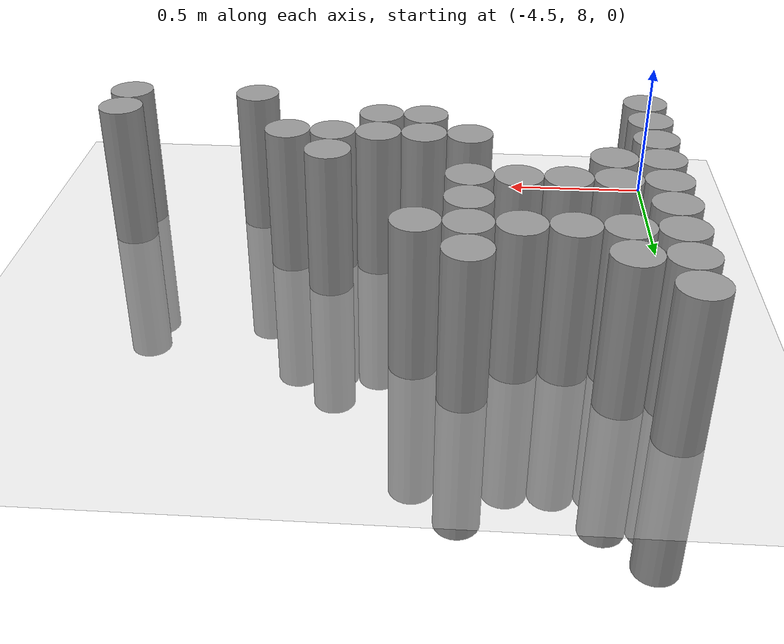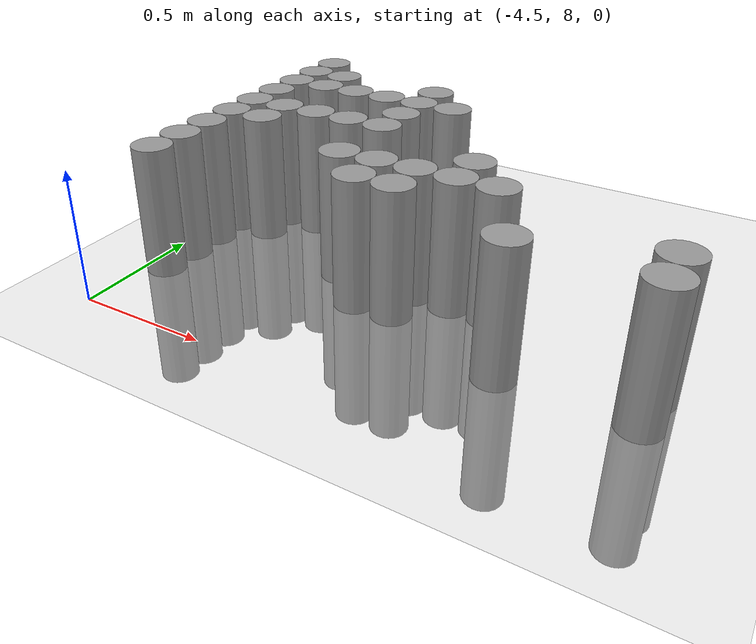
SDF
<sdf version="1.6">
 <world name="default">
  <model name="ground_plane">
   <static>1</static>
   <link name="link">
    <collision name="collision">
     <geometry><plane><normal>0 0 1</normal><size>100 100</size></plane></geometry>
     <surface><friction><ode><mu>100</mu><mu2>50</mu2></ode></friction></surface>
    </collision>
    <visual name="visual">
     <cast_shadows>0</cast_shadows>
     <geometry><plane><normal>0 0 1</normal><size>100 100</size></plane></geometry>
     <material>
      <script><uri>file://media/materials/scripts/gazebo.material</uri><name>Gazebo/Grey</name></script>
     </material>
    </visual>
   </link>
  </model>
  <model name="unit_cylinder_117">
   <pose>-4.425000 8.325000 0.000000 0.000000 0.000000 0.000000</pose>
   <link name="link">
    <inertial>
     <mass>1</mass>
     <inertia><ixx>0.145833</ixx><ixy>0</ixy><ixz>0</ixz><iyy>0.145833</iyy><iyz>0</iyz><izz>0.125</izz></inertia>
    </inertial>
    <collision name="collision">
     <geometry><cylinder><radius>0.075000</radius><length>1</length></cylinder></geometry>
    </collision>
    <visual name="visual">
     <geometry><cylinder><radius>0.075000</radius><length>1</length></cylinder></geometry>
     <material>
      <script><name>Gazebo/Grey</name><uri>file://media/materials/scripts/gazebo.material</uri></script>
     </material>
    </visual>
   </link>
  </model>
  <model name="unit_cylinder_118">
   <pose>-4.425000 8.475000 0.000000 0.000000 0.000000 0.000000</pose>
   <link name="link">
    <inertial>
     <mass>1</mass>
     <inertia><ixx>0.145833</ixx><ixy>0</ixy><ixz>0</ixz><iyy>0.145833</iyy><iyz>0</iyz><izz>0.125</izz></inertia>
    </inertial>
    <collision name="collision">
     <geometry><cylinder><radius>0.075000</radius><length>1</length></cylinder></geometry>
    </collision>
    <visual name="visual">
     <geometry><cylinder><radius>0.075000</radius><length>1</length></cylinder></geometry>
     <material>
      <script><name>Gazebo/Grey</name><uri>file://media/materials/scripts/gazebo.material</uri></script>
     </material>
    </visual>
   </link>
  </model>
  <model name="unit_cylinder_119">
   <pose>-4.425000 8.625000 0.000000 0.000000 0.000000 0.000000</pose>
   <link name="link">
    <inertial>
     <mass>1</mass>
     <inertia><ixx>0.145833</ixx><ixy>0</ixy><ixz>0</ixz><iyy>0.145833</iyy><iyz>0</iyz><izz>0.125</izz></inertia>
    </inertial>
    <collision name="collision">
     <geometry><cylinder><radius>0.075000</radius><length>1</length></cylinder></geometry>
    </collision>
    <visual name="visual">
     <geometry><cylinder><radius>0.075000</radius><length>1</length></cylinder></geometry>
     <material>
      <script><name>Gazebo/Grey</name><uri>file://media/materials/scripts/gazebo.material</uri></script>
     </material>
    </visual>
   </link>
  </model>
  <model name="unit_cylinder_120">
   <pose>-4.425000 8.775000 0.000000 0.000000 0.000000 0.000000</pose>
   <link name="link">
    <inertial>
     <mass>1</mass>
     <inertia><ixx>0.145833</ixx><ixy>0</ixy><ixz>0</ixz><iyy>0.145833</iyy><iyz>0</iyz><izz>0.125</izz></inertia>
    </inertial>
    <collision name="collision">
     <geometry><cylinder><radius>0.075000</radius><length>1</length></cylinder></geometry>
    </collision>
    <visual name="visual">
     <geometry><cylinder><radius>0.075000</radius><length>1</length></cylinder></geometry>
     <material>
      <script><name>Gazebo/Grey</name><uri>file://media/materials/scripts/gazebo.material</uri></script>
     </material>
    </visual>
   </link>
  </model>
  <model name="unit_cylinder_121">
   <pose>-4.425000 8.925000 0.000000 0.000000 0.000000 0.000000</pose>
   <link name="link">
    <inertial>
     <mass>1</mass>
     <inertia><ixx>0.145833</ixx><ixy>0</ixy><ixz>0</ixz><iyy>0.145833</iyy><iyz>0</iyz><izz>0.125</izz></inertia>
    </inertial>
    <collision name="collision">
     <geometry><cylinder><radius>0.075000</radius><length>1</length></cylinder></geometry>
    </collision>
    <visual name="visual">
     <geometry><cylinder><radius>0.075000</radius><length>1</length></cylinder></geometry>
     <material>
      <script><name>Gazebo/Grey</name><uri>file://media/materials/scripts/gazebo.material</uri></script>
     </material>
    </visual>
   </link>
  </model>
  <model name="unit_cylinder_122">
   <pose>-4.425000 9.075000 0.000000 0.000000 0.000000 0.000000</pose>
   <link name="link">
    <inertial>
     <mass>1</mass>
     <inertia><ixx>0.145833</ixx><ixy>0</ixy><ixz>0</ixz><iyy>0.145833</iyy><iyz>0</iyz><izz>0.125</izz></inertia>
    </inertial>
    <collision name="collision">
     <geometry><cylinder><radius>0.075000</radius><length>1</length></cylinder></geometry>
    </collision>
    <visual name="visual">
     <geometry><cylinder><radius>0.075000</radius><length>1</length></cylinder></geometry>
     <material>
      <script><name>Gazebo/Grey</name><uri>file://media/materials/scripts/gazebo.material</uri></script>
     </material>
    </visual>
   </link>
  </model>
  <model name="unit_cylinder_123">
   <pose>-4.425000 9.225000 0.000000 0.000000 0.000000 0.000000</pose>
   <link name="link">
    <inertial>
     <mass>1</mass>
     <inertia><ixx>0.145833</ixx><ixy>0</ixy><ixz>0</ixz><iyy>0.145833</iyy><iyz>0</iyz><izz>0.125</izz></inertia>
    </inertial>
    <collision name="collision">
     <geometry><cylinder><radius>0.075000</radius><length>1</length></cylinder></geometry>
    </collision>
    <visual name="visual">
     <geometry><cylinder><radius>0.075000</radius><length>1</length></cylinder></geometry>
     <material>
      <script><name>Gazebo/Grey</name><uri>file://media/materials/scripts/gazebo.material</uri></script>
     </material>
    </visual>
   </link>
  </model>
  <model name="unit_cylinder_124">
   <pose>-4.425000 9.375000 0.000000 0.000000 0.000000 0.000000</pose>
   <link name="link">
    <inertial>
     <mass>1</mass>
     <inertia><ixx>0.145833</ixx><ixy>0</ixy><ixz>0</ixz><iyy>0.145833</iyy><iyz>0</iyz><izz>0.125</izz></inertia>
    </inertial>
    <collision name="collision">
     <geometry><cylinder><radius>0.075000</radius><length>1</length></cylinder></geometry>
    </collision>
    <visual name="visual">
     <geometry><cylinder><radius>0.075000</radius><length>1</length></cylinder></geometry>
     <material>
      <script><name>Gazebo/Grey</name><uri>file://media/materials/scripts/gazebo.material</uri></script>
     </material>
    </visual>
   </link>
  </model>
  <model name="unit_cylinder_125">
   <pose>-4.425000 9.525000 0.000000 0.000000 0.000000 0.000000</pose>
   <link name="link">
    <inertial>
     <mass>1</mass>
     <inertia><ixx>0.145833</ixx><ixy>0</ixy><ixz>0</ixz><iyy>0.145833</iyy><iyz>0</iyz><izz>0.125</izz></inertia>
    </inertial>
    <collision name="collision">
     <geometry><cylinder><radius>0.075000</radius><length>1</length></cylinder></geometry>
    </collision>
    <visual name="visual">
     <geometry><cylinder><radius>0.075000</radius><length>1</length></cylinder></geometry>
     <material>
      <script><name>Gazebo/Grey</name><uri>file://media/materials/scripts/gazebo.material</uri></script>
     </material>
    </visual>
   </link>
  </model>
  <model name="unit_cylinder_132">
   <pose>-4.275000 8.775000 0.000000 0.000000 0.000000 0.000000</pose>
   <link name="link">
    <inertial>
     <mass>1</mass>
     <inertia><ixx>0.145833</ixx><ixy>0</ixy><ixz>0</ixz><iyy>0.145833</iyy><iyz>0</iyz><izz>0.125</izz></inertia>
    </inertial>
    <collision name="collision">
     <geometry><cylinder><radius>0.075000</radius><length>1</length></cylinder></geometry>
    </collision>
    <visual name="visual">
     <geometry><cylinder><radius>0.075000</radius><length>1</length></cylinder></geometry>
     <material>
      <script><name>Gazebo/Grey</name><uri>file://media/materials/scripts/gazebo.material</uri></script>
     </material>
    </visual>
   </link>
  </model>
  <model name="unit_cylinder_133">
   <pose>-4.275000 8.925000 0.000000 0.000000 0.000000 0.000000</pose>
   <link name="link">
    <inertial>
     <mass>1</mass>
     <inertia><ixx>0.145833</ixx><ixy>0</ixy><ixz>0</ixz><iyy>0.145833</iyy><iyz>0</iyz><izz>0.125</izz></inertia>
    </inertial>
    <collision name="collision">
     <geometry><cylinder><radius>0.075000</radius><length>1</length></cylinder></geometry>
    </collision>
    <visual name="visual">
     <geometry><cylinder><radius>0.075000</radius><length>1</length></cylinder></geometry>
     <material>
      <script><name>Gazebo/Grey</name><uri>file://media/materials/scripts/gazebo.material</uri></script>
     </material>
    </visual>
   </link>
  </model>
  <model name="unit_cylinder_134">
   <pose>-4.275000 9.225000 0.000000 0.000000 0.000000 0.000000</pose>
   <link name="link">
    <inertial>
     <mass>1</mass>
     <inertia><ixx>0.145833</ixx><ixy>0</ixy><ixz>0</ixz><iyy>0.145833</iyy><iyz>0</iyz><izz>0.125</izz></inertia>
    </inertial>
    <collision name="collision">
     <geometry><cylinder><radius>0.075000</radius><length>1</length></cylinder></geometry>
    </collision>
    <visual name="visual">
     <geometry><cylinder><radius>0.075000</radius><length>1</length></cylinder></geometry>
     <material>
      <script><name>Gazebo/Grey</name><uri>file://media/materials/scripts/gazebo.material</uri></script>
     </material>
    </visual>
   </link>
  </model>
  <model name="unit_cylinder_135">
   <pose>-4.275000 9.375000 0.000000 0.000000 0.000000 0.000000</pose>
   <link name="link">
    <inertial>
     <mass>1</mass>
     <inertia><ixx>0.145833</ixx><ixy>0</ixy><ixz>0</ixz><iyy>0.145833</iyy><iyz>0</iyz><izz>0.125</izz></inertia>
    </inertial>
    <collision name="collision">
     <geometry><cylinder><radius>0.075000</radius><length>1</length></cylinder></geometry>
    </collision>
    <visual name="visual">
     <geometry><cylinder><radius>0.075000</radius><length>1</length></cylinder></geometry>
     <material>
      <script><name>Gazebo/Grey</name><uri>file://media/materials/scripts/gazebo.material</uri></script>
     </material>
    </visual>
   </link>
  </model>
  <model name="unit_cylinder_140">
   <pose>-4.125000 8.925000 0.000000 0.000000 0.000000 0.000000</pose>
   <link name="link">
    <inertial>
     <mass>1</mass>
     <inertia><ixx>0.145833</ixx><ixy>0</ixy><ixz>0</ixz><iyy>0.145833</iyy><iyz>0</iyz><izz>0.125</izz></inertia>
    </inertial>
    <collision name="collision">
     <geometry><cylinder><radius>0.075000</radius><length>1</length></cylinder></geometry>
    </collision>
    <visual name="visual">
     <geometry><cylinder><radius>0.075000</radius><length>1</length></cylinder></geometry>
     <material>
      <script><name>Gazebo/Grey</name><uri>file://media/materials/scripts/gazebo.material</uri></script>
     </material>
    </visual>
   </link>
  </model>
  <model name="unit_cylinder_141">
   <pose>-4.125000 9.225000 0.000000 0.000000 0.000000 0.000000</pose>
   <link name="link">
    <inertial>
     <mass>1</mass>
     <inertia><ixx>0.145833</ixx><ixy>0</ixy><ixz>0</ixz><iyy>0.145833</iyy><iyz>0</iyz><izz>0.125</izz></inertia>
    </inertial>
    <collision name="collision">
     <geometry><cylinder><radius>0.075000</radius><length>1</length></cylinder></geometry>
    </collision>
    <visual name="visual">
     <geometry><cylinder><radius>0.075000</radius><length>1</length></cylinder></geometry>
     <material>
      <script><name>Gazebo/Grey</name><uri>file://media/materials/scripts/gazebo.material</uri></script>
     </material>
    </visual>
   </link>
  </model>
  <model name="unit_cylinder_145">
   <pose>-3.975000 8.925000 0.000000 0.000000 0.000000 0.000000</pose>
   <link name="link">
    <inertial>
     <mass>1</mass>
     <inertia><ixx>0.145833</ixx><ixy>0</ixy><ixz>0</ixz><iyy>0.145833</iyy><iyz>0</iyz><izz>0.125</izz></inertia>
    </inertial>
    <collision name="collision">
     <geometry><cylinder><radius>0.075000</radius><length>1</length></cylinder></geometry>
    </collision>
    <visual name="visual">
     <geometry><cylinder><radius>0.075000</radius><length>1</length></cylinder></geometry>
     <material>
      <script><name>Gazebo/Grey</name><uri>file://media/materials/scripts/gazebo.material</uri></script>
     </material>
    </visual>
   </link>
  </model>
  <model name="unit_cylinder_146">
   <pose>-3.975000 9.225000 0.000000 0.000000 0.000000 0.000000</pose>
   <link name="link">
    <inertial>
     <mass>1</mass>
     <inertia><ixx>0.145833</ixx><ixy>0</ixy><ixz>0</ixz><iyy>0.145833</iyy><iyz>0</iyz><izz>0.125</izz></inertia>
    </inertial>
    <collision name="collision">
     <geometry><cylinder><radius>0.075000</radius><length>1</length></cylinder></geometry>
    </collision>
    <visual name="visual">
     <geometry><cylinder><radius>0.075000</radius><length>1</length></cylinder></geometry>
     <material>
      <script><name>Gazebo/Grey</name><uri>file://media/materials/scripts/gazebo.material</uri></script>
     </material>
    </visual>
   </link>
  </model>
  <model name="unit_cylinder_147">
   <pose>-3.825000 8.625000 0.000000 0.000000 0.000000 0.000000</pose>
   <link name="link">
    <inertial>
     <mass>1</mass>
     <inertia><ixx>0.145833</ixx><ixy>0</ixy><ixz>0</ixz><iyy>0.145833</iyy><iyz>0</iyz><izz>0.125</izz></inertia>
    </inertial>
    <collision name="collision">
     <geometry><cylinder><radius>0.075000</radius><length>1</length></cylinder></geometry>
    </collision>
    <visual name="visual">
     <geometry><cylinder><radius>0.075000</radius><length>1</length></cylinder></geometry>
     <material>
      <script><name>Gazebo/Grey</name><uri>file://media/materials/scripts/gazebo.material</uri></script>
     </material>
    </visual>
   </link>
  </model>
  <model name="unit_cylinder_148">
   <pose>-3.825000 8.925000 0.000000 0.000000 0.000000 0.000000</pose>
   <link name="link">
    <inertial>
     <mass>1</mass>
     <inertia><ixx>0.145833</ixx><ixy>0</ixy><ixz>0</ixz><iyy>0.145833</iyy><iyz>0</iyz><izz>0.125</izz></inertia>
    </inertial>
    <collision name="collision">
     <geometry><cylinder><radius>0.075000</radius><length>1</length></cylinder></geometry>
    </collision>
    <visual name="visual">
     <geometry><cylinder><radius>0.075000</radius><length>1</length></cylinder></geometry>
     <material>
      <script><name>Gazebo/Grey</name><uri>file://media/materials/scripts/gazebo.material</uri></script>
     </material>
    </visual>
   </link>
  </model>
  <model name="unit_cylinder_149">
   <pose>-3.825000 9.075000 0.000000 0.000000 0.000000 0.000000</pose>
   <link name="link">
    <inertial>
     <mass>1</mass>
     <inertia><ixx>0.145833</ixx><ixy>0</ixy><ixz>0</ixz><iyy>0.145833</iyy><iyz>0</iyz><izz>0.125</izz></inertia>
    </inertial>
    <collision name="collision">
     <geometry><cylinder><radius>0.075000</radius><length>1</length></cylinder></geometry>
    </collision>
    <visual name="visual">
     <geometry><cylinder><radius>0.075000</radius><length>1</length></cylinder></geometry>
     <material>
      <script><name>Gazebo/Grey</name><uri>file://media/materials/scripts/gazebo.material</uri></script>
     </material>
    </visual>
   </link>
  </model>
  <model name="unit_cylinder_150">
   <pose>-3.825000 9.225000 0.000000 0.000000 0.000000 0.000000</pose>
   <link name="link">
    <inertial>
     <mass>1</mass>
     <inertia><ixx>0.145833</ixx><ixy>0</ixy><ixz>0</ixz><iyy>0.145833</iyy><iyz>0</iyz><izz>0.125</izz></inertia>
    </inertial>
    <collision name="collision">
     <geometry><cylinder><radius>0.075000</radius><length>1</length></cylinder></geometry>
    </collision>
    <visual name="visual">
     <geometry><cylinder><radius>0.075000</radius><length>1</length></cylinder></geometry>
     <material>
      <script><name>Gazebo/Grey</name><uri>file://media/materials/scripts/gazebo.material</uri></script>
     </material>
    </visual>
   </link>
  </model>
  <model name="unit_cylinder_151">
   <pose>-3.825000 9.375000 0.000000 0.000000 0.000000 0.000000</pose>
   <link name="link">
    <inertial>
     <mass>1</mass>
     <inertia><ixx>0.145833</ixx><ixy>0</ixy><ixz>0</ixz><iyy>0.145833</iyy><iyz>0</iyz><izz>0.125</izz></inertia>
    </inertial>
    <collision name="collision">
     <geometry><cylinder><radius>0.075000</radius><length>1</length></cylinder></geometry>
    </collision>
    <visual name="visual">
     <geometry><cylinder><radius>0.075000</radius><length>1</length></cylinder></geometry>
     <material>
      <script><name>Gazebo/Grey</name><uri>file://media/materials/scripts/gazebo.material</uri></script>
     </material>
    </visual>
   </link>
  </model>
  <model name="unit_cylinder_152">
   <pose>-3.675000 8.475000 0.000000 0.000000 0.000000 0.000000</pose>
   <link name="link">
    <inertial>
     <mass>1</mass>
     <inertia><ixx>0.145833</ixx><ixy>0</ixy><ixz>0</ixz><iyy>0.145833</iyy><iyz>0</iyz><izz>0.125</izz></inertia>
    </inertial>
    <collision name="collision">
     <geometry><cylinder><radius>0.075000</radius><length>1</length></cylinder></geometry>
    </collision>
    <visual name="visual">
     <geometry><cylinder><radius>0.075000</radius><length>1</length></cylinder></geometry>
     <material>
      <script><name>Gazebo/Grey</name><uri>file://media/materials/scripts/gazebo.material</uri></script>
     </material>
    </visual>
   </link>
  </model>
  <model name="unit_cylinder_153">
   <pose>-3.675000 8.625000 0.000000 0.000000 0.000000 0.000000</pose>
   <link name="link">
    <inertial>
     <mass>1</mass>
     <inertia><ixx>0.145833</ixx><ixy>0</ixy><ixz>0</ixz><iyy>0.145833</iyy><iyz>0</iyz><izz>0.125</izz></inertia>
    </inertial>
    <collision name="collision">
     <geometry><cylinder><radius>0.075000</radius><length>1</length></cylinder></geometry>
    </collision>
    <visual name="visual">
     <geometry><cylinder><radius>0.075000</radius><length>1</length></cylinder></geometry>
     <material>
      <script><name>Gazebo/Grey</name><uri>file://media/materials/scripts/gazebo.material</uri></script>
     </material>
    </visual>
   </link>
  </model>
  <model name="unit_cylinder_154">
   <pose>-3.675000 9.225000 0.000000 0.000000 0.000000 0.000000</pose>
   <link name="link">
    <inertial>
     <mass>1</mass>
     <inertia><ixx>0.145833</ixx><ixy>0</ixy><ixz>0</ixz><iyy>0.145833</iyy><iyz>0</iyz><izz>0.125</izz></inertia>
    </inertial>
    <collision name="collision">
     <geometry><cylinder><radius>0.075000</radius><length>1</length></cylinder></geometry>
    </collision>
    <visual name="visual">
     <geometry><cylinder><radius>0.075000</radius><length>1</length></cylinder></geometry>
     <material>
      <script><name>Gazebo/Grey</name><uri>file://media/materials/scripts/gazebo.material</uri></script>
     </material>
    </visual>
   </link>
  </model>
  <model name="unit_cylinder_155">
   <pose>-3.525000 8.475000 0.000000 0.000000 0.000000 0.000000</pose>
   <link name="link">
    <inertial>
     <mass>1</mass>
     <inertia><ixx>0.145833</ixx><ixy>0</ixy><ixz>0</ixz><iyy>0.145833</iyy><iyz>0</iyz><izz>0.125</izz></inertia>
    </inertial>
    <collision name="collision">
     <geometry><cylinder><radius>0.075000</radius><length>1</length></cylinder></geometry>
    </collision>
    <visual name="visual">
     <geometry><cylinder><radius>0.075000</radius><length>1</length></cylinder></geometry>
     <material>
      <script><name>Gazebo/Grey</name><uri>file://media/materials/scripts/gazebo.material</uri></script>
     </material>
    </visual>
   </link>
  </model>
  <model name="unit_cylinder_156">
   <pose>-3.525000 8.625000 0.000000 0.000000 0.000000 0.000000</pose>
   <link name="link">
    <inertial>
     <mass>1</mass>
     <inertia><ixx>0.145833</ixx><ixy>0</ixy><ixz>0</ixz><iyy>0.145833</iyy><iyz>0</iyz><izz>0.125</izz></inertia>
    </inertial>
    <collision name="collision">
     <geometry><cylinder><radius>0.075000</radius><length>1</length></cylinder></geometry>
    </collision>
    <visual name="visual">
     <geometry><cylinder><radius>0.075000</radius><length>1</length></cylinder></geometry>
     <material>
      <script><name>Gazebo/Grey</name><uri>file://media/materials/scripts/gazebo.material</uri></script>
     </material>
    </visual>
   </link>
  </model>
  <model name="unit_cylinder_157">
   <pose>-3.375000 8.625000 0.000000 0.000000 0.000000 0.000000</pose>
   <link name="link">
    <inertial>
     <mass>1</mass>
     <inertia><ixx>0.145833</ixx><ixy>0</ixy><ixz>0</ixz><iyy>0.145833</iyy><iyz>0</iyz><izz>0.125</izz></inertia>
    </inertial>
    <collision name="collision">
     <geometry><cylinder><radius>0.075000</radius><length>1</length></cylinder></geometry>
    </collision>
    <visual name="visual">
     <geometry><cylinder><radius>0.075000</radius><length>1</length></cylinder></geometry>
     <material>
      <script><name>Gazebo/Grey</name><uri>file://media/materials/scripts/gazebo.material</uri></script>
     </material>
    </visual>
   </link>
  </model>
  <model name="unit_cylinder_158">
   <pose>-3.375000 8.775000 0.000000 0.000000 0.000000 0.000000</pose>
   <link name="link">
    <inertial>
     <mass>1</mass>
     <inertia><ixx>0.145833</ixx><ixy>0</ixy><ixz>0</ixz><iyy>0.145833</iyy><iyz>0</iyz><izz>0.125</izz></inertia>
    </inertial>
    <collision name="collision">
     <geometry><cylinder><radius>0.075000</radius><length>1</length></cylinder></geometry>
    </collision>
    <visual name="visual">
     <geometry><cylinder><radius>0.075000</radius><length>1</length></cylinder></geometry>
     <material>
      <script><name>Gazebo/Grey</name><uri>file://media/materials/scripts/gazebo.material</uri></script>
     </material>
    </visual>
   </link>
  </model>
  <model name="unit_cylinder_160">
   <pose>-3.225000 8.625000 0.000000 0.000000 0.000000 0.000000</pose>
   <link name="link">
    <inertial>
     <mass>1</mass>
     <inertia><ixx>0.145833</ixx><ixy>0</ixy><ixz>0</ixz><iyy>0.145833</iyy><iyz>0</iyz><izz>0.125</izz></inertia>
    </inertial>
    <collision name="collision">
     <geometry><cylinder><radius>0.075000</radius><length>1</length></cylinder></geometry>
    </collision>
    <visual name="visual">
     <geometry><cylinder><radius>0.075000</radius><length>1</length></cylinder></geometry>
     <material>
      <script><name>Gazebo/Grey</name><uri>file://media/materials/scripts/gazebo.material</uri></script>
     </material>
    </visual>
   </link>
  </model>
  <model name="unit_cylinder_164">
   <pose>-3.075000 8.325000 0.000000 0.000000 0.000000 0.000000</pose>
   <link name="link">
    <inertial>
     <mass>1</mass>
     <inertia><ixx>0.145833</ixx><ixy>0</ixy><ixz>0</ixz><iyy>0.145833</iyy><iyz>0</iyz><izz>0.125</izz></inertia>
    </inertial>
    <collision name="collision">
     <geometry><cylinder><radius>0.075000</radius><length>1</length></cylinder></geometry>
    </collision>
    <visual name="visual">
     <geometry><cylinder><radius>0.075000</radius><length>1</length></cylinder></geometry>
     <material>
      <script><name>Gazebo/Grey</name><uri>file://media/materials/scripts/gazebo.material</uri></script>
     </material>
    </visual>
   </link>
  </model>
  <model name="unit_cylinder_172">
   <pose>-2.625000 8.325000 0.000000 0.000000 0.000000 0.000000</pose>
   <link name="link">
    <inertial>
     <mass>1</mass>
     <inertia><ixx>0.145833</ixx><ixy>0</ixy><ixz>0</ixz><iyy>0.145833</iyy><iyz>0</iyz><izz>0.125</izz></inertia>
    </inertial>
    <collision name="collision">
     <geometry><cylinder><radius>0.075000</radius><length>1</length></cylinder></geometry>
    </collision>
    <visual name="visual">
     <geometry><cylinder><radius>0.075000</radius><length>1</length></cylinder></geometry>
     <material>
      <script><name>Gazebo/Grey</name><uri>file://media/materials/scripts/gazebo.material</uri></script>
     </material>
    </visual>
   </link>
  </model>
  <model name="unit_cylinder_173">
   <pose>-2.625000 8.475000 0.000000 0.000000 0.000000 0.000000</pose>
   <link name="link">
    <inertial>
     <mass>1</mass>
     <inertia><ixx>0.145833</ixx><ixy>0</ixy><ixz>0</ixz><iyy>0.145833</iyy><iyz>0</iyz><izz>0.125</izz></inertia>
    </inertial>
    <collision name="collision">
     <geometry><cylinder><radius>0.075000</radius><length>1</length></cylinder></geometry>
    </collision>
    <visual name="visual">
     <geometry><cylinder><radius>0.075000</radius><length>1</length></cylinder></geometry>
     <material>
      <script><name>Gazebo/Grey</name><uri>file://media/materials/scripts/gazebo.material</uri></script>
     </material>
    </visual>
   </link>
  </model>
 </world>
</sdf>
